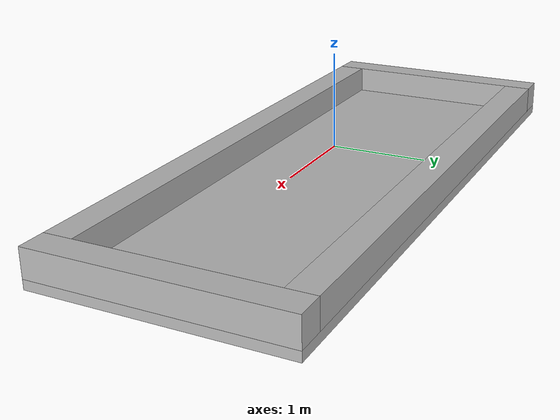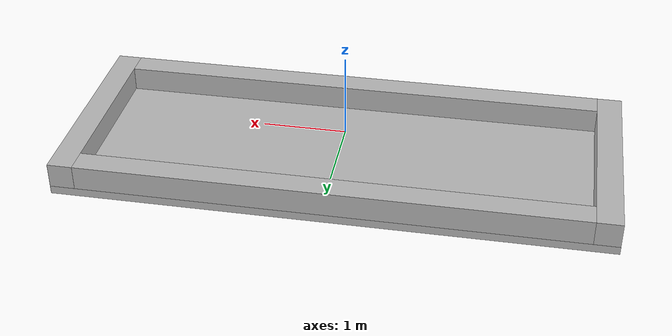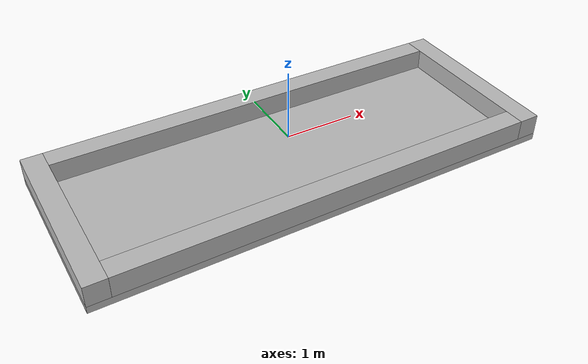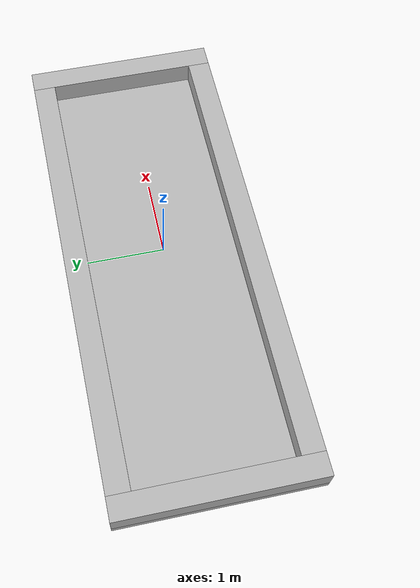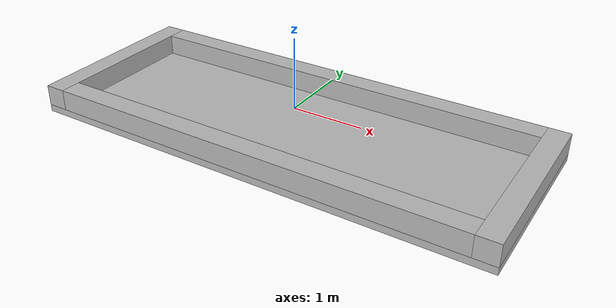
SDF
<?xml version="1.0" ?>
<sdf version="1.6">
  <world name="world">
    <model name="biorob_pool">
      <pose>0.0 0.0 0.0 0.0 0.0 0.0</pose>
      <link name="floor">
        <pose>0.0 0.0 0.0 0.0 0.0 0.0</pose>
        <collision name="floor_collision">
          <pose>0.0 0.0 -0.35 0.0 0.0 0.0</pose>
          <geometry>
            <box>
              <size>6.6 2.6 0.1</size>
            </box>
          </geometry>
        </collision>
        <visual name="floor_visual">
          <pose>0.0 0.0 -0.35 0.0 0.0 0.0</pose>
          <geometry>
            <box>
              <size>6.6 2.6 0.1</size>
            </box>
          </geometry>
          <material/>
        </visual>
      </link>
      <link name="side_x_0">
        <pose>-3.15 0.0 -0.15 0.0 0.0 0.0</pose>
        <collision name="side_x_0_collision">
          <pose>0.0 0.0 0.0 0.0 0.0 0.0</pose>
          <geometry>
            <box>
              <size>0.3 2.6 0.3</size>
            </box>
          </geometry>
        </collision>
        <visual name="side_x_0_visual">
          <pose>0.0 0.0 0.0 0.0 0.0 0.0</pose>
          <geometry>
            <box>
              <size>0.3 2.6 0.3</size>
            </box>
          </geometry>
          <material/>
        </visual>
      </link>
      <link name="side_x_1">
        <pose>3.15 0.0 -0.15 0.0 0.0 0.0</pose>
        <collision name="side_x_1_collision">
          <pose>0.0 0.0 0.0 0.0 0.0 0.0</pose>
          <geometry>
            <box>
              <size>0.3 2.6 0.3</size>
            </box>
          </geometry>
        </collision>
        <visual name="side_x_1_visual">
          <pose>0.0 0.0 0.0 0.0 0.0 0.0</pose>
          <geometry>
            <box>
              <size>0.3 2.6 0.3</size>
            </box>
          </geometry>
          <material/>
        </visual>
      </link>
      <link name="side_y_0">
        <pose>0.0 -1.15 -0.15 0.0 0.0 0.0</pose>
        <collision name="side_y_0_collision">
          <pose>0.0 0.0 0.0 0.0 0.0 0.0</pose>
          <geometry>
            <box>
              <size>6 0.3 0.3</size>
            </box>
          </geometry>
        </collision>
        <visual name="side_y_0_visual">
          <pose>0.0 0.0 0.0 0.0 0.0 0.0</pose>
          <geometry>
            <box>
              <size>6 0.3 0.3</size>
            </box>
          </geometry>
          <material/>
        </visual>
      </link>
      <link name="side_y_1">
        <pose>0.0 1.15 -0.15 0.0 0.0 0.0</pose>
        <collision name="side_y_1_collision">
          <pose>0.0 0.0 0.0 0.0 0.0 0.0</pose>
          <geometry>
            <box>
              <size>6 0.3 0.3</size>
            </box>
          </geometry>
        </collision>
        <visual name="side_y_1_visual">
          <pose>0.0 0.0 0.0 0.0 0.0 0.0</pose>
          <geometry>
            <box>
              <size>6 0.3 0.3</size>
            </box>
          </geometry>
          <material/>
        </visual>
      </link>
    </model>
  </world>
</sdf>
